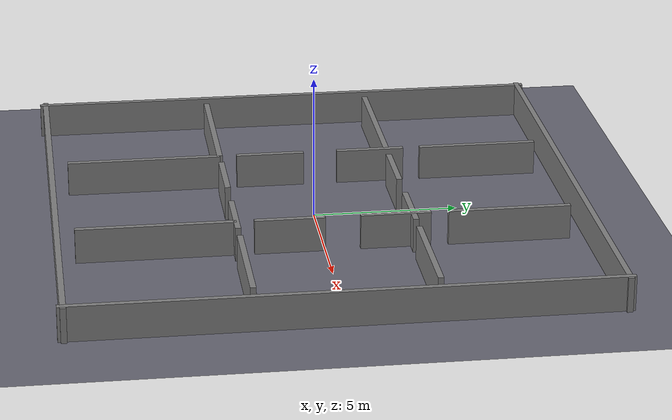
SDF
<?xml version="1.0" ?>
<sdf version="1.9">
  <world name="corridors">

    <physics name="default_physics" default="true" type="ode">
      <max_step_size>0.001</max_step_size>
      <real_time_factor>1</real_time_factor>
    </physics>

    <scene>
      <ambient>0.3 0.3 0.3 1</ambient>
      <background>0.2 0.2 0.2 1</background>
      <shadows>true</shadows>
    </scene>

    <light name="overhead" type="point">
      <pose>0 0 5 0 0 0</pose>
      <diffuse>0.9 0.9 0.9 1</diffuse>
      <specular>0.1 0.1 0.1 1</specular>
      <attenuation><range>20</range><linear>0.1</linear></attenuation>
    </light>

    <!-- Ground -->
    <model name="ground_plane">
      <static>true</static>
      <link name="link">
        <collision name="collision">
          <geometry><plane><normal>0 0 1</normal><size>50 50</size></plane></geometry>
          <surface><friction><ode><mu>0.8</mu><mu2>0.8</mu2></ode></friction></surface>
        </collision>
        <visual name="visual">
          <geometry><plane><normal>0 0 1</normal><size>50 50</size></plane></geometry>
          <material><ambient>0.4 0.4 0.45 1</ambient><diffuse>0.4 0.4 0.45 1</diffuse></material>
        </visual>
      </link>
    </model>

    <!-- ── Outer perimeter walls ─────────────────────────────────────── -->
    <!-- Each wall is 0.2 m thick, 1.2 m tall -->
    <model name="outer_n"><static>true</static><pose>0 9 0.6 0 0 0</pose>
      <link name="link"><collision name="col"><geometry><box><size>18.4 0.2 1.2</size></box></geometry></collision>
      <visual name="vis"><geometry><box><size>18.4 0.2 1.2</size></box></geometry>
        <material><ambient>0.5 0.5 0.5 1</ambient><diffuse>0.5 0.5 0.5 1</diffuse></material></visual></link></model>
    <model name="outer_s"><static>true</static><pose>0 -9 0.6 0 0 0</pose>
      <link name="link"><collision name="col"><geometry><box><size>18.4 0.2 1.2</size></box></geometry></collision>
      <visual name="vis"><geometry><box><size>18.4 0.2 1.2</size></box></geometry>
        <material><ambient>0.5 0.5 0.5 1</ambient><diffuse>0.5 0.5 0.5 1</diffuse></material></visual></link></model>
    <model name="outer_e"><static>true</static><pose>9 0 0.6 0 0 0</pose>
      <link name="link"><collision name="col"><geometry><box><size>0.2 18.4 1.2</size></box></geometry></collision>
      <visual name="vis"><geometry><box><size>0.2 18.4 1.2</size></box></geometry>
        <material><ambient>0.5 0.5 0.5 1</ambient><diffuse>0.5 0.5 0.5 1</diffuse></material></visual></link></model>
    <model name="outer_w"><static>true</static><pose>-9 0 0.6 0 0 0</pose>
      <link name="link"><collision name="col"><geometry><box><size>0.2 18.4 1.2</size></box></geometry></collision>
      <visual name="vis"><geometry><box><size>0.2 18.4 1.2</size></box></geometry>
        <material><ambient>0.5 0.5 0.5 1</ambient><diffuse>0.5 0.5 0.5 1</diffuse></material></visual></link></model>

    <!-- ── Interior horizontal walls (Y direction) with doorways ─────── -->
    <!-- Row divider at y=3: two segments leaving 1.2 m gap at x=-2.4 and x=2.4 -->
    <model name="hwall_n_w1"><static>true</static><pose>-5.7 3 0.6 0 0 0</pose>
      <link name="link"><collision name="col"><geometry><box><size>5.4 0.2 1.2</size></box></geometry></collision>
      <visual name="vis"><geometry><box><size>5.4 0.2 1.2</size></box></geometry>
        <material><ambient>0.5 0.5 0.5 1</ambient><diffuse>0.5 0.5 0.5 1</diffuse></material></visual></link></model>
    <model name="hwall_n_w2"><static>true</static><pose>-1.2 3 0.6 0 0 0</pose>
      <link name="link"><collision name="col"><geometry><box><size>2.4 0.2 1.2</size></box></geometry></collision>
      <visual name="vis"><geometry><box><size>2.4 0.2 1.2</size></box></geometry>
        <material><ambient>0.5 0.5 0.5 1</ambient><diffuse>0.5 0.5 0.5 1</diffuse></material></visual></link></model>
    <model name="hwall_n_e1"><static>true</static><pose>2.4 3 0.6 0 0 0</pose>
      <link name="link"><collision name="col"><geometry><box><size>2.4 0.2 1.2</size></box></geometry></collision>
      <visual name="vis"><geometry><box><size>2.4 0.2 1.2</size></box></geometry>
        <material><ambient>0.5 0.5 0.5 1</ambient><diffuse>0.5 0.5 0.5 1</diffuse></material></visual></link></model>
    <model name="hwall_n_e2"><static>true</static><pose>6.3 3 0.6 0 0 0</pose>
      <link name="link"><collision name="col"><geometry><box><size>4.2 0.2 1.2</size></box></geometry></collision>
      <visual name="vis"><geometry><box><size>4.2 0.2 1.2</size></box></geometry>
        <material><ambient>0.5 0.5 0.5 1</ambient><diffuse>0.5 0.5 0.5 1</diffuse></material></visual></link></model>

    <!-- Row divider at y=-3 (mirror) -->
    <model name="hwall_s_w1"><static>true</static><pose>-5.7 -3 0.6 0 0 0</pose>
      <link name="link"><collision name="col"><geometry><box><size>5.4 0.2 1.2</size></box></geometry></collision>
      <visual name="vis"><geometry><box><size>5.4 0.2 1.2</size></box></geometry>
        <material><ambient>0.5 0.5 0.5 1</ambient><diffuse>0.5 0.5 0.5 1</diffuse></material></visual></link></model>
    <model name="hwall_s_w2"><static>true</static><pose>-1.2 -3 0.6 0 0 0</pose>
      <link name="link"><collision name="col"><geometry><box><size>2.4 0.2 1.2</size></box></geometry></collision>
      <visual name="vis"><geometry><box><size>2.4 0.2 1.2</size></box></geometry>
        <material><ambient>0.5 0.5 0.5 1</ambient><diffuse>0.5 0.5 0.5 1</diffuse></material></visual></link></model>
    <model name="hwall_s_e1"><static>true</static><pose>2.4 -3 0.6 0 0 0</pose>
      <link name="link"><collision name="col"><geometry><box><size>2.4 0.2 1.2</size></box></geometry></collision>
      <visual name="vis"><geometry><box><size>2.4 0.2 1.2</size></box></geometry>
        <material><ambient>0.5 0.5 0.5 1</ambient><diffuse>0.5 0.5 0.5 1</diffuse></material></visual></link></model>
    <model name="hwall_s_e2"><static>true</static><pose>6.3 -3 0.6 0 0 0</pose>
      <link name="link"><collision name="col"><geometry><box><size>4.2 0.2 1.2</size></box></geometry></collision>
      <visual name="vis"><geometry><box><size>4.2 0.2 1.2</size></box></geometry>
        <material><ambient>0.5 0.5 0.5 1</ambient><diffuse>0.5 0.5 0.5 1</diffuse></material></visual></link></model>

    <!-- ── Interior vertical walls (X direction) with doorways ──────── -->
    <!-- Column divider at x=3 -->
    <model name="vwall_e_n1"><static>true</static><pose>3 6.3 0.6 0 0 0</pose>
      <link name="link"><collision name="col"><geometry><box><size>0.2 4.2 1.2</size></box></geometry></collision>
      <visual name="vis"><geometry><box><size>0.2 4.2 1.2</size></box></geometry>
        <material><ambient>0.5 0.5 0.5 1</ambient><diffuse>0.5 0.5 0.5 1</diffuse></material></visual></link></model>
    <model name="vwall_e_n2"><static>true</static><pose>3 2.4 0.6 0 0 0</pose>
      <link name="link"><collision name="col"><geometry><box><size>0.2 2.4 1.2</size></box></geometry></collision>
      <visual name="vis"><geometry><box><size>0.2 2.4 1.2</size></box></geometry>
        <material><ambient>0.5 0.5 0.5 1</ambient><diffuse>0.5 0.5 0.5 1</diffuse></material></visual></link></model>
    <model name="vwall_e_s1"><static>true</static><pose>3 -1.2 0.6 0 0 0</pose>
      <link name="link"><collision name="col"><geometry><box><size>0.2 2.4 1.2</size></box></geometry></collision>
      <visual name="vis"><geometry><box><size>0.2 2.4 1.2</size></box></geometry>
        <material><ambient>0.5 0.5 0.5 1</ambient><diffuse>0.5 0.5 0.5 1</diffuse></material></visual></link></model>
    <model name="vwall_e_s2"><static>true</static><pose>3 -5.7 0.6 0 0 0</pose>
      <link name="link"><collision name="col"><geometry><box><size>0.2 5.4 1.2</size></box></geometry></collision>
      <visual name="vis"><geometry><box><size>0.2 5.4 1.2</size></box></geometry>
        <material><ambient>0.5 0.5 0.5 1</ambient><diffuse>0.5 0.5 0.5 1</diffuse></material></visual></link></model>

    <!-- Column divider at x=-3 (mirror) -->
    <model name="vwall_w_n1"><static>true</static><pose>-3 6.3 0.6 0 0 0</pose>
      <link name="link"><collision name="col"><geometry><box><size>0.2 4.2 1.2</size></box></geometry></collision>
      <visual name="vis"><geometry><box><size>0.2 4.2 1.2</size></box></geometry>
        <material><ambient>0.5 0.5 0.5 1</ambient><diffuse>0.5 0.5 0.5 1</diffuse></material></visual></link></model>
    <model name="vwall_w_n2"><static>true</static><pose>-3 2.4 0.6 0 0 0</pose>
      <link name="link"><collision name="col"><geometry><box><size>0.2 2.4 1.2</size></box></geometry></collision>
      <visual name="vis"><geometry><box><size>0.2 2.4 1.2</size></box></geometry>
        <material><ambient>0.5 0.5 0.5 1</ambient><diffuse>0.5 0.5 0.5 1</diffuse></material></visual></link></model>
    <model name="vwall_w_s1"><static>true</static><pose>-3 -1.2 0.6 0 0 0</pose>
      <link name="link"><collision name="col"><geometry><box><size>0.2 2.4 1.2</size></box></geometry></collision>
      <visual name="vis"><geometry><box><size>0.2 2.4 1.2</size></box></geometry>
        <material><ambient>0.5 0.5 0.5 1</ambient><diffuse>0.5 0.5 0.5 1</diffuse></material></visual></link></model>
    <model name="vwall_w_s2"><static>true</static><pose>-3 -5.7 0.6 0 0 0</pose>
      <link name="link"><collision name="col"><geometry><box><size>0.2 5.4 1.2</size></box></geometry></collision>
      <visual name="vis"><geometry><box><size>0.2 5.4 1.2</size></box></geometry>
        <material><ambient>0.5 0.5 0.5 1</ambient><diffuse>0.5 0.5 0.5 1</diffuse></material></visual></link></model>

  </world>
</sdf>
